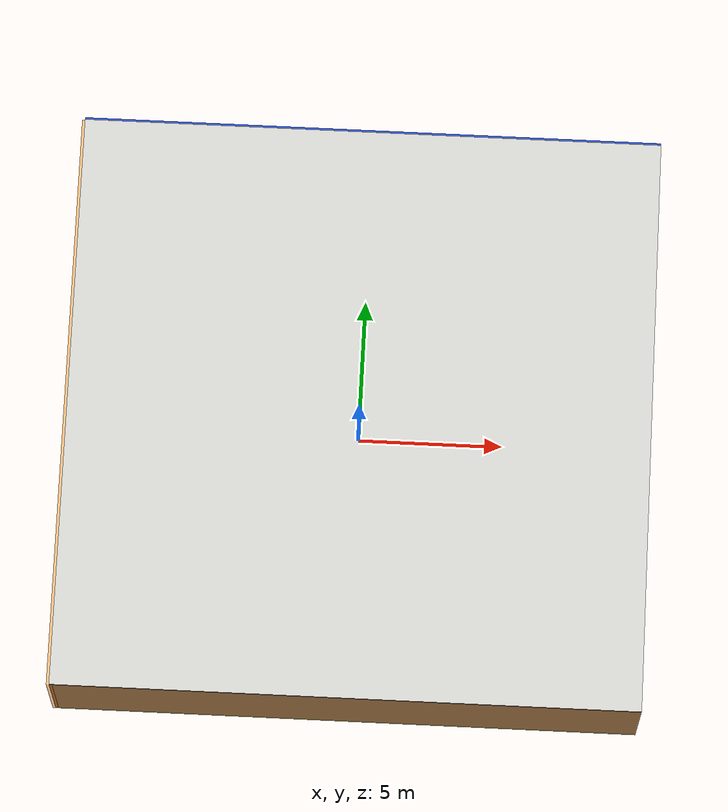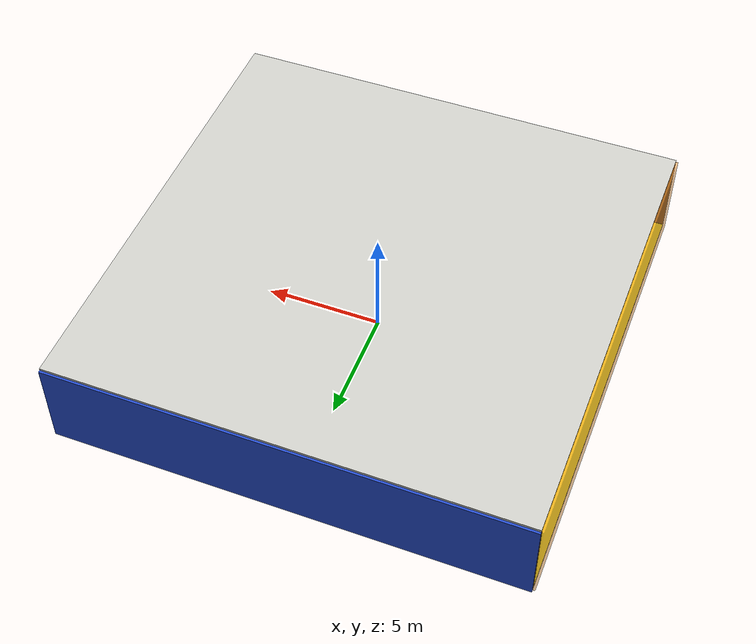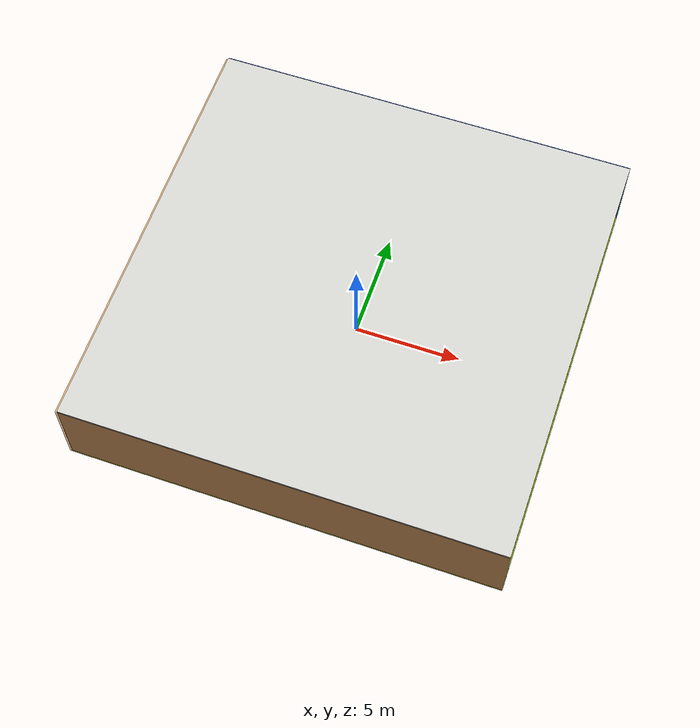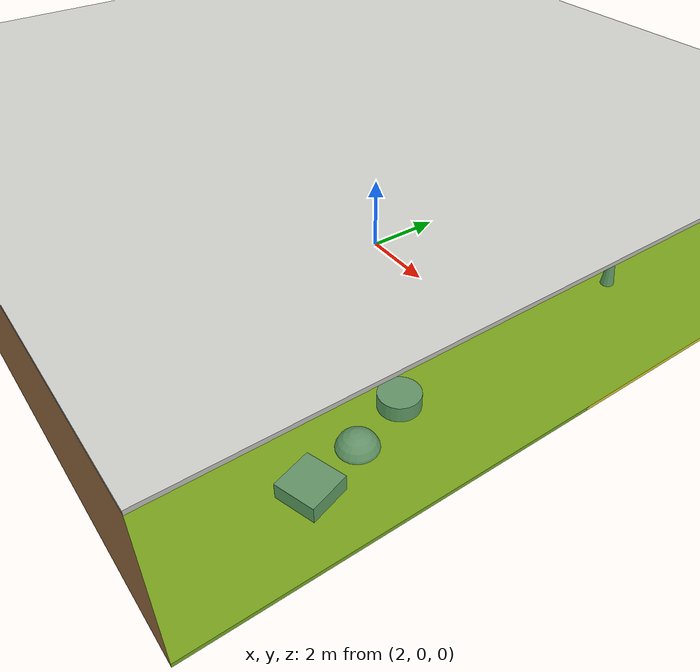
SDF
<sdf version="1.4">
 <world name="default">
  <physics type="ode">
   <max_step_size>0.001</max_step_size>
   <real_time_factor>1</real_time_factor>
   <real_time_update_rate>1000</real_time_update_rate>
   <gravity>0 0 -9.8</gravity>
  </physics>
  <scene><ambient>0.4 0.4 0.4 1</ambient><background>0.7 0.7 0.7 1</background><shadows>1</shadows></scene>
  <model name="Surrounding">
   <static>1</static>
   <link name="Ceiling">
    <collision name="Ceiling_Collision"><geometry><box><size>20 20 0.1</size></box></geometry></collision>
    <visual name="Ceiling_Visual">
     <geometry><box><size>20 20 0.1</size></box></geometry>
     <material>
      <script><uri>file://media/materials/scripts/gazebo.material</uri><name>Gazebo/CeilingTiled</name></script>
     </material>
    </visual>
    <pose>0 0 4.05 0 0 0</pose>
   </link>
   <link name="Wall_South">
    <collision name="Wall_South_Collision">
     <geometry><box><size>20 0 4</size></box></geometry>
     <pose>0 0 2 0 -0 0</pose>
    </collision>
    <visual name="Wall_South_Visual">
     <pose>0 0 2 0 -0 0</pose>
     <geometry><box><size>20 0 4</size></box></geometry>
     <material>
      <script><uri>file://media/materials/scripts/gazebo.material</uri><name>Gazebo/WoodPallet</name></script>
     </material>
    </visual>
    <velocity_decay><linear>0</linear><angular>0</angular></velocity_decay>
    <pose>0 -10 0 0 -0 0</pose>
   </link>
   <link name="Wall_East">
    <collision name="Wall_21_Collision">
     <geometry><box><size>20 0 4</size></box></geometry>
     <pose>0 0 2 0 -0 0</pose>
    </collision>
    <visual name="Wall_21_Visual">
     <pose>0 0 2 0 -0 0</pose>
     <geometry><box><size>20 0 4</size></box></geometry>
     <material>
      <script><uri>file://media/materials/scripts/gazebo.material</uri><name>Gazebo/GreenTransparent</name></script>
     </material>
    </visual>
    <velocity_decay><linear>0</linear><angular>0</angular></velocity_decay>
    <pose>10 0 0 0 -0 1.5708</pose>
   </link>
   <link name="Wall_North">
    <collision name="Wall_22_Collision">
     <geometry><box><size>20 0.2 4</size></box></geometry>
     <pose>0 0 2 0 -0 0</pose>
    </collision>
    <visual name="Wall_22_Visual">
     <pose>0 0 2 0 -0 0</pose>
     <geometry><box><size>20 0.2 4</size></box></geometry>
     <material>
      <script><uri>file://media/materials/scripts/gazebo.material</uri><name>Gazebo/BlueLaser</name></script>
     </material>
    </visual>
    <velocity_decay><linear>0</linear><angular>0</angular></velocity_decay>
    <pose>0 10 0 0 -0 0</pose>
   </link>
   <link name="Wall_West">
    <collision name="Wall_23_Collision">
     <geometry><box><size>20 0.2 4</size></box></geometry>
     <pose>0 0 2 0 -0 0</pose>
    </collision>
    <visual name="Wall_23_Visual">
     <pose>0 0 2 0 -0 0</pose>
     <geometry><box><size>20 0.2 4</size></box></geometry>
     <material>
      <script>
       <uri>file://media/materials/scripts/gazebo.material</uri>
       <name>Gazebo/OrangeTransparent</name>
      </script>
     </material>
    </visual>
    <velocity_decay><linear>0</linear><angular>0</angular></velocity_decay>
    <pose>-10 0 0 0 0 -1.5708</pose>
   </link>
   <link name="Ground_link">
    <collision name="collision">
     <pose>0 0 .05 0 -0 0</pose>
     <geometry><box><size>20 20 0.1</size></box></geometry>
    </collision>
    <visual name="visual">
     <pose>0 0 .05 0 -0 0</pose>
     <geometry><box><size>20 20 0.1</size></box></geometry>
     <material>
      <script><uri>file://media/materials/scripts/gazebo.material</uri><name>Gazebo/Yellow</name></script>
     </material>
    </visual>
   </link>
   <static>1</static>
  </model>
  <spherical_coordinates>
   <surface_model>EARTH_WGS84</surface_model>
   <latitude_deg>0</latitude_deg>
   <longitude_deg>0</longitude_deg>
   <elevation>0</elevation>
   <heading_deg>0</heading_deg>
  </spherical_coordinates>
  <light name="lightball_0" type="diffuse">
   <diffuse>0.8 0.8 0.8 1</diffuse>
   <specular>0.2 0.2 0.2 1</specular>
   <attenuation>
    <range>100</range>
    <constant>0.7</constant>
    <linear>0.01</linear>
    <quadratic>0.001</quadratic>
   </attenuation>
   <direction>-0.5 0.1 -0.9</direction>
   <pose>-8.94722731599 9.70948489458 1.53483464626 0 0 0</pose>
  </light>
  <light name="lightball_1" type="diffuse">
   <diffuse>0.8 0.8 0.8 1</diffuse>
   <specular>0.2 0.2 0.2 1</specular>
   <attenuation>
    <range>100</range>
    <constant>0.7</constant>
    <linear>0.01</linear>
    <quadratic>0.001</quadratic>
   </attenuation>
   <direction>-0.5 0.1 -0.9</direction>
   <pose>-7.92370088826 7.81221596262 0.798586392124 0 0 0</pose>
  </light>
  <light name="lightball_2" type="diffuse">
   <diffuse>0.8 0.8 0.8 1</diffuse>
   <specular>0.2 0.2 0.2 1</specular>
   <attenuation>
    <range>100</range>
    <constant>0.7</constant>
    <linear>0.01</linear>
    <quadratic>0.001</quadratic>
   </attenuation>
   <direction>-0.5 0.1 -0.9</direction>
   <pose>-2.92243621133 -3.00082060305 2.34833720344 0 0 0</pose>
  </light>
  <light name="lightball_3" type="diffuse">
   <diffuse>0.8 0.8 0.8 1</diffuse>
   <specular>0.2 0.2 0.2 1</specular>
   <attenuation>
    <range>100</range>
    <constant>0.7</constant>
    <linear>0.01</linear>
    <quadratic>0.001</quadratic>
   </attenuation>
   <direction>-0.5 0.1 -0.9</direction>
   <pose>9.7794304178 7.93580621783 0.747841874723 0 0 0</pose>
  </light>
  <light name="lightball_4" type="diffuse">
   <diffuse>0.8 0.8 0.8 1</diffuse>
   <specular>0.2 0.2 0.2 1</specular>
   <attenuation>
    <range>100</range>
    <constant>0.7</constant>
    <linear>0.01</linear>
    <quadratic>0.001</quadratic>
   </attenuation>
   <direction>-0.5 0.1 -0.9</direction>
   <pose>-0.0580099146411 4.35206188953 1.99715824771 0 0 0</pose>
  </light>
  <light name="lightball_5" type="diffuse">
   <diffuse>0.8 0.8 0.8 1</diffuse>
   <specular>0.2 0.2 0.2 1</specular>
   <attenuation>
    <range>100</range>
    <constant>0.7</constant>
    <linear>0.01</linear>
    <quadratic>0.001</quadratic>
   </attenuation>
   <direction>-0.5 0.1 -0.9</direction>
   <pose>-1.18592233386 -0.00179234988861 1.89985491092 0 0 0</pose>
  </light>
  <light name="lightball_6" type="diffuse">
   <diffuse>0.8 0.8 0.8 1</diffuse>
   <specular>0.2 0.2 0.2 1</specular>
   <attenuation>
    <range>100</range>
    <constant>0.7</constant>
    <linear>0.01</linear>
    <quadratic>0.001</quadratic>
   </attenuation>
   <direction>-0.5 0.1 -0.9</direction>
   <pose>8.95618061799 -7.32747392912 1.187942202 0 0 0</pose>
  </light>
  <light name="lightball_7" type="diffuse">
   <diffuse>0.8 0.8 0.8 1</diffuse>
   <specular>0.2 0.2 0.2 1</specular>
   <attenuation>
    <range>100</range>
    <constant>0.7</constant>
    <linear>0.01</linear>
    <quadratic>0.001</quadratic>
   </attenuation>
   <direction>-0.5 0.1 -0.9</direction>
   <pose>-9.42239090209 -6.49286153141 0.862046707519 0 0 0</pose>
  </light>
  <light name="lightball_8" type="diffuse">
   <diffuse>0.8 0.8 0.8 1</diffuse>
   <specular>0.2 0.2 0.2 1</specular>
   <attenuation>
    <range>100</range>
    <constant>0.7</constant>
    <linear>0.01</linear>
    <quadratic>0.001</quadratic>
   </attenuation>
   <direction>-0.5 0.1 -0.9</direction>
   <pose>1.83661030247 -2.08202826498 1.3082003459 0 0 0</pose>
  </light>
  <light name="lightball_9" type="diffuse">
   <diffuse>0.8 0.8 0.8 1</diffuse>
   <specular>0.2 0.2 0.2 1</specular>
   <attenuation>
    <range>100</range>
    <constant>0.7</constant>
    <linear>0.01</linear>
    <quadratic>0.001</quadratic>
   </attenuation>
   <direction>-0.5 0.1 -0.9</direction>
   <pose>1.05299211374 2.41102433351 0.989374900772 0 0 0</pose>
  </light>
  <include><uri>model://cabinet</uri><pose>-2.14496920328 -8.23941146573 0 0 0 1.20385687285</pose></include>
  <include><uri>model://table</uri><pose>1.4362253915 0.723227393003 0 0 0 0.0604453453325</pose></include>
  <include>
   <uri>model://construction_cone</uri>
   <pose>4.35478332216 -4.50064243806 0 0 0 2.25017093532</pose>
  </include>
  <include>
   <uri>model://textured_shapes</uri>
   <pose>7.97750925338 -4.85852672427 0 0 0 0.301456304137</pose>
  </include>
  <include>
   <uri>model://construction_cone</uri>
   <pose>7.16464652484 3.77092485965 0 0 0 0.755865938439</pose>
  </include>
 </world>
</sdf>

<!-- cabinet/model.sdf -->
<sdf version="1.5">
  <model name="cabinet">
    <static>true</static>
    <link name="cabinet_bottom_plate">
      <inertial>
        <pose>0 0 -1 0 0 0</pose>
        <inertia>
          <ixx>2.050000</ixx>
          <ixy>0</ixy>
          <ixz>0</ixz>
          <iyy>2.050000</iyy>
          <iyz>0</iyz>
          <izz>2.050000</izz>
        </inertia>
        <mass>25.000000</mass>
      </inertial>
      <collision name="cabinet_bottom_plate_geom">
        <pose>0 0 0.010000 0 0 0</pose>
        <geometry>
          <box>
            <size>0.450000 0.450000 0.020000</size>
          </box>
        </geometry>
      </collision>
      <visual name="cabinet_bottom_plate_geom_visual">
        <pose>0 0 0.010000 0 0 0</pose>
        <geometry>
          <box>
            <size>0.450000 0.450000 0.020000</size>
          </box>
        </geometry>
        <material>
          <script>
            <uri>model://media/materials/scripts/gazebo.material</uri>
            <name>Gazebo/Wood</name>
          </script>
        </material>
      </visual>
      <collision name="cabinet_bottom_plate_geom_cabinet_back_plate">
        <pose>0.235000 0 0.510000 0 0 0</pose>
        <geometry>
          <box>
            <size>0.020000 0.450000 1.020000</size>
          </box>
        </geometry>
      </collision>
      <visual name="cabinet_bottom_plate_geom_cabinet_back_plate_visual">
        <pose>0.235000 0 0.510000 0 0 0</pose>
        <geometry>
          <box>
            <size>0.020000 0.450000 1.020000</size>
          </box>
        </geometry>
        <material>
          <script>
            <uri>model://media/materials/scripts/gazebo.material</uri>
            <name>Gazebo/Wood</name>
          </script>
        </material>
      </visual>
      <collision name="cabinet_bottom_plate_geom_cabinet_left_plate">
        <pose>0 0.235000 0.510000 0 0 0</pose>
        <geometry>
          <box>
            <size>0.450000 0.020000 1.020000</size>
          </box>
        </geometry>
      </collision>
      <visual name="cabinet_bottom_plate_geom_cabinet_left_plate_visual">
        <pose>0 0.235000 0.510000 0 0 0</pose>
        <geometry>
          <box>
            <size>0.450000 0.020000 1.020000</size>
          </box>
        </geometry>
        <material>
          <script>
            <uri>model://media/materials/scripts/gazebo.material</uri>
            <name>Gazebo/Wood</name>
          </script>
        </material>
      </visual>
      <collision name="cabinet_bottom_plate_geom_cabinet_middle_plate">
        <pose>0 0 0.510000 0 0 0</pose>
        <geometry>
          <box>
            <size>0.450000 0.450000 0.020000</size>
          </box>
        </geometry>
      </collision>
      <visual name="cabinet_bottom_plate_geom_cabinet_middle_plate_visual">
        <pose>0 0 0.510000 0 0 0</pose>
        <geometry>
          <box>
            <size>0.450000 0.450000 0.020000</size>
          </box>
        </geometry>
        <material>
          <script>
            <uri>model://media/materials/scripts/gazebo.material</uri>
            <name>Gazebo/Wood</name>
          </script>
        </material>
      </visual>
      <collision name="cabinet_bottom_plate_geom_cabinet_right_plate">
        <pose>0 -0.235000 0.510000 0 0 0</pose>
        <geometry>
          <box>
            <size>0.450000 0.020000 1.020000</size>
          </box>
        </geometry>
      </collision>
      <visual name="cabinet_bottom_plate_geom_cabinet_right_plate_visual">
        <pose>0 -0.235000 0.510000 0 0 0</pose>
        <geometry>
          <box>
            <size>0.450000 0.020000 1.020000</size>
          </box>
        </geometry>
        <material>
          <script>
            <uri>model://media/materials/scripts/gazebo.material</uri>
            <name>Gazebo/Wood</name>
          </script>
        </material>
      </visual>
      <collision name="cabinet_bottom_plate_geom_cabinet_top_plate">
        <pose>0 0 1.010000 0 0 0</pose>
        <geometry>
          <box>
            <size>0.450000 0.450000 0.020000</size>
          </box>
        </geometry>
      </collision>
      <visual name="cabinet_bottom_plate_geom_cabinet_top_plate_visual">
        <pose>0 0 1.010000 0 0 0</pose>
        <geometry>
          <box>
            <size>0.450000 0.450000 0.020000</size>
          </box>
        </geometry>
        <material>
          <script>
            <uri>model://media/materials/scripts/gazebo.material</uri>
            <name>Gazebo/Wood</name>
          </script>
        </material>
      </visual>
    </link>
  </model>
</sdf>

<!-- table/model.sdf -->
<sdf version="1.5">
  <model name="table">
    <static>true</static>
    <link name="link">
      <collision name="surface">
        <pose>0 0 1.0 0 0 0</pose>
        <geometry>
          <box>
            <size>1.5 0.8 0.03</size>
          </box>
        </geometry>
        <surface>
          <friction>
            <ode>
              <mu>0.6</mu>
              <mu2>0.6</mu2>
            </ode>
          </friction>
        </surface>
      </collision>
      <visual name="visual1">
        <pose>0 0 1.0 0 0 0</pose>
        <geometry>
          <box>
            <size>1.5 0.8 0.03</size>
          </box>
        </geometry>
        <material>
          <script>
            <uri>model://media/materials/scripts/gazebo.material</uri>
            <name>Gazebo/Wood</name>
          </script>
        </material>
      </visual>
      <collision name="front_left_leg">
        <pose>0.68 0.38 0.5 0 0 0</pose>
        <geometry>
          <cylinder>
            <radius>0.02</radius>
            <length>1.0</length>
          </cylinder>
        </geometry>
      </collision>
      <visual name="front_left_leg">
        <pose>0.68 0.38 0.5 0 0 0</pose>
        <geometry>
          <cylinder>
            <radius>0.02</radius>
            <length>1.0</length>
          </cylinder>
        </geometry>
        <material>
          <script>
            <uri>model://media/materials/scripts/gazebo.material</uri>
            <name>Gazebo/Grey</name>
          </script>
        </material>
      </visual>
      <collision name="front_right_leg">
        <pose>0.68 -0.38 0.5 0 0 0</pose>
        <geometry>
          <cylinder>
            <radius>0.02</radius>
            <length>1.0</length>
          </cylinder>
        </geometry>
      </collision>
      <visual name="front_right_leg">
        <pose>0.68 -0.38 0.5 0 0 0</pose>
        <geometry>
          <cylinder>
            <radius>0.02</radius>
            <length>1.0</length>
          </cylinder>
        </geometry>
        <material>
          <script>
            <uri>model://media/materials/scripts/gazebo.material</uri>
            <name>Gazebo/Grey</name>
          </script>
        </material>
      </visual>
      <collision name="back_right_leg">
        <pose>-0.68 -0.38 0.5 0 0 0</pose>
        <geometry>
          <cylinder>
            <radius>0.02</radius>
            <length>1.0</length>
          </cylinder>
        </geometry>
      </collision>
      <visual name="back_right_leg">
        <pose>-0.68 -0.38 0.5 0 0 0</pose>
        <geometry>
          <cylinder>
            <radius>0.02</radius>
            <length>1.0</length>
          </cylinder>
        </geometry>
        <material>
          <script>
            <uri>model://media/materials/scripts/gazebo.material</uri>
            <name>Gazebo/Grey</name>
          </script>
        </material>
      </visual>
      <collision name="back_left_leg">
        <pose>-0.68 0.38 0.5 0 0 0</pose>
        <geometry>
          <cylinder>
            <radius>0.02</radius>
            <length>1.0</length>
          </cylinder>
        </geometry>
      </collision>
      <visual name="back_left_leg">
        <pose>-0.68 0.38 0.5 0 0 0</pose>
        <geometry>
          <cylinder>
            <radius>0.02</radius>
            <length>1.0</length>
          </cylinder>
        </geometry>
        <material>
          <script>
            <uri>model://media/materials/scripts/gazebo.material</uri>
            <name>Gazebo/Grey</name>
          </script>
        </material>
      </visual>
    </link>
  </model>
</sdf>

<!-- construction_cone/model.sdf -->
<sdf version="1.5">
  <model name="Construction Cone">
    <link name="link">
      <collision name="collision">
        <geometry>
          <mesh>
            <scale>10 10 10</scale>
            <uri>file://isr-testbed/construction_cone/meshes/construction_cone.dae</uri>
          </mesh>
        </geometry>
      </collision>
      <visual name="visual">
        <geometry>
          <mesh>
            <scale>10 10 10</scale>
            <uri>file://isr-testbed/construction_cone/meshes/construction_cone.dae</uri>
          </mesh>
        </geometry>
      </visual>
    </link>
  </model>
</sdf>

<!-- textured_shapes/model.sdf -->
<sdf version="1.6">
  <model name="textured_shapes">
    <pose>0 0 0.5 0 0 0</pose>
    <link name="box">
      <pose>0 -1.5 0 0 0 0</pose>
      <collision name="collision">
        <geometry>
          <box>
            <size>1 1 1</size>
          </box>
        </geometry>
      </collision>
      <visual name="visual">
        <geometry>
          <box>
            <size>1 1 1</size>
          </box>
        </geometry>
        <material>
          <script>
            <uri>model://../model_source/models/textured_shapes/materials/scripts</uri>
            <uri>model://../model_source/models/textured_shapes/materials/textures</uri>
            <name>TexturedShape/Squares</name>
          </script>
        </material>
      </visual>
    </link>
    <link name="sphere">
      <collision name="collision">
        <geometry>
          <sphere>
            <radius>0.5</radius>
          </sphere>
        </geometry>
      </collision>
      <visual name="visual">
        <geometry>
          <sphere>
            <radius>0.5</radius>
          </sphere>
        </geometry>
        <material>
          <script>
            <uri>model://../model_source/models/textured_shapes/materials/scripts</uri>
            <uri>model://../model_source/models/textured_shapes/materials/textures</uri>
            <name>TexturedShape/Squares</name>
          </script>
        </material>
      </visual>
    </link>
    <link name="cylinder">
      <pose>0 1.5 0 0 0 0</pose>
      <collision name="collision">
        <geometry>
          <cylinder>
            <radius>0.5</radius>
            <length>1</length>
          </cylinder>
        </geometry>
      </collision>
      <visual name="visual">
        <geometry>
          <cylinder>
            <radius>0.5</radius>
            <length>1</length>
          </cylinder>
        </geometry>
        <material>
          <script>
            <uri>model://../model_source/models/textured_shapes/materials/scripts</uri>
            <uri>model://../model_source/models/textured_shapes/materials/textures</uri>
            <name>TexturedShape/Squares</name>
          </script>
        </material>
      </visual>
    </link>
  </model>
</sdf>
